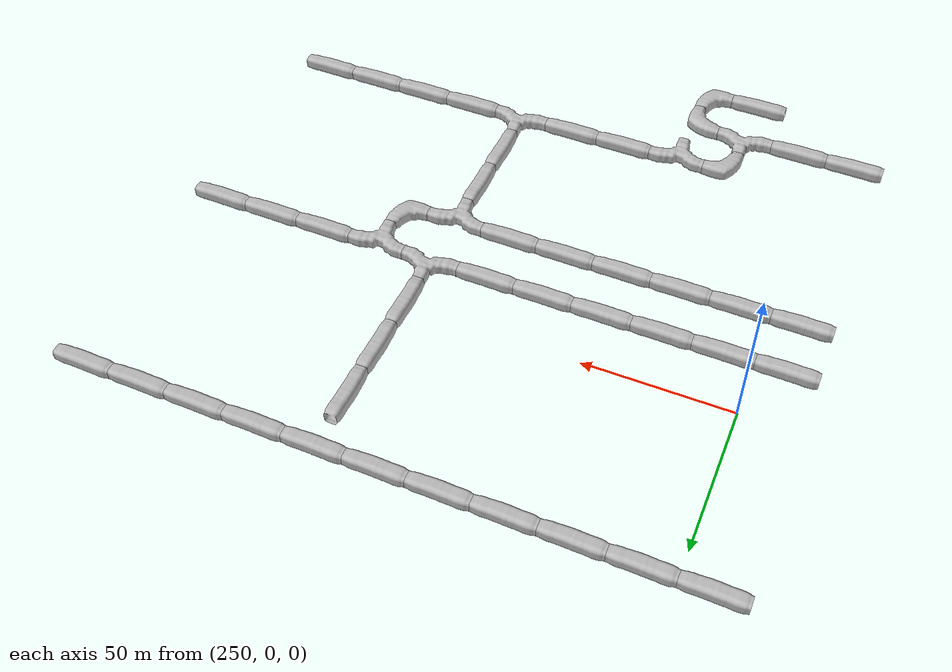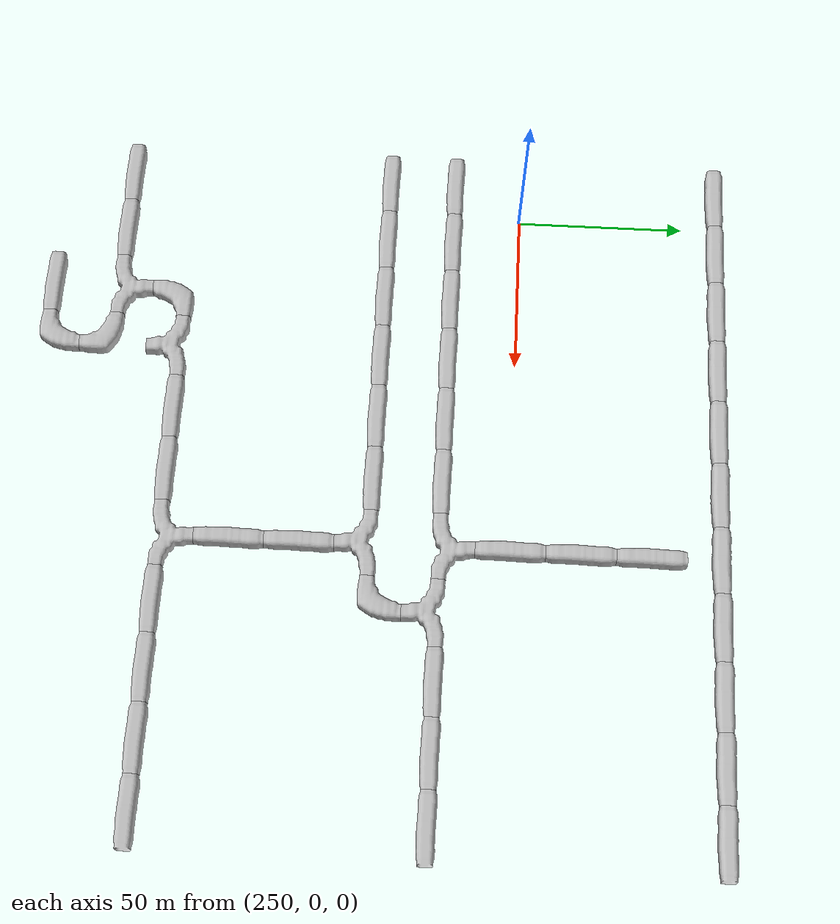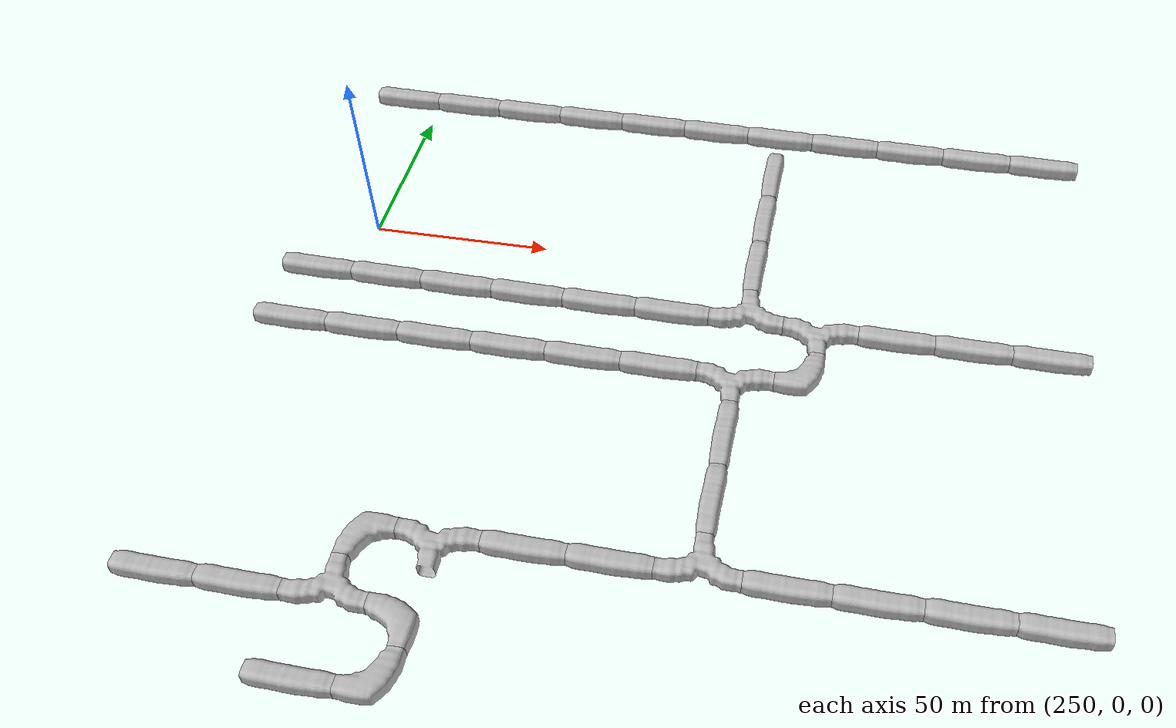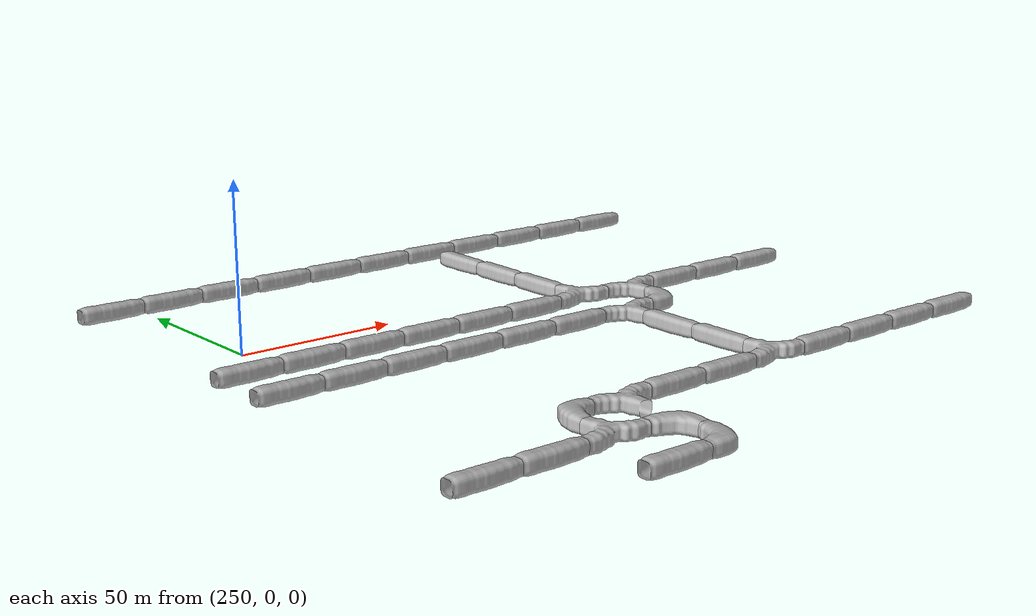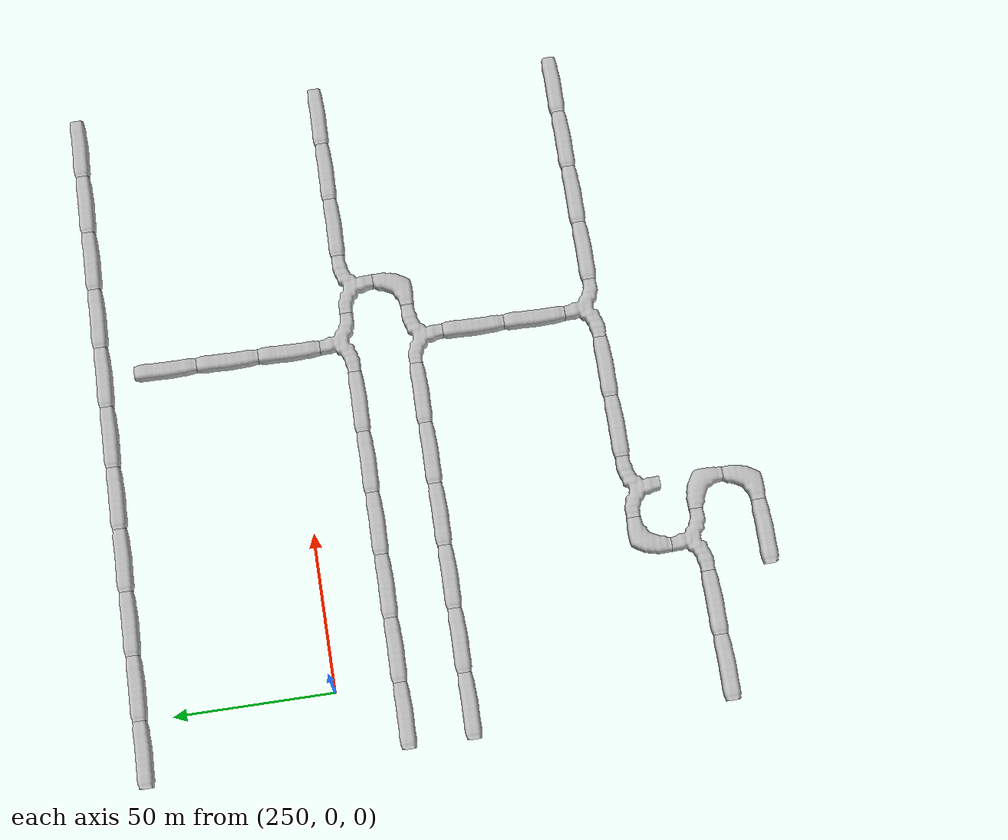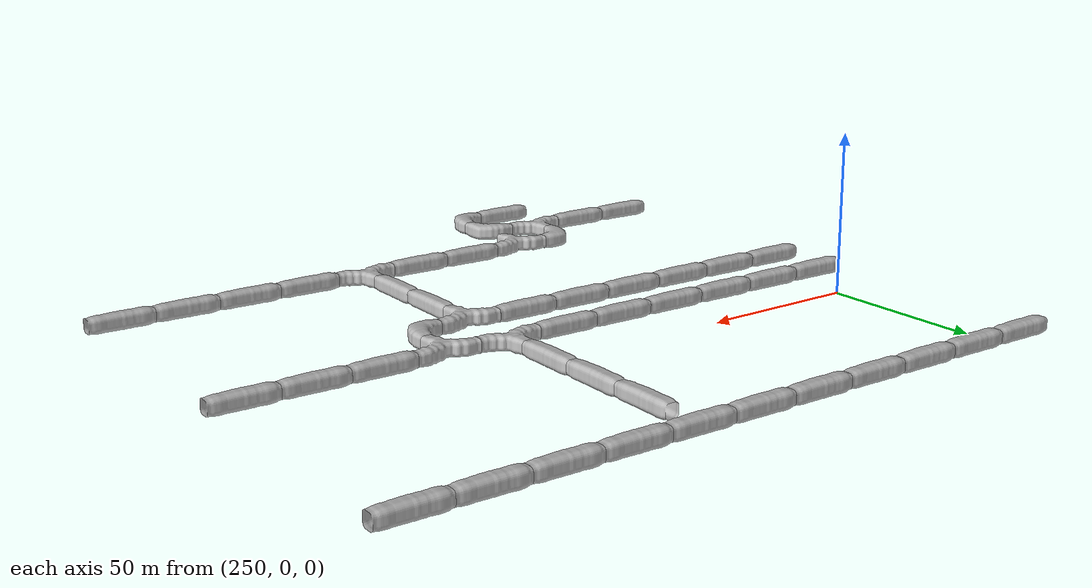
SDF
<sdf version="1.6">
 <world name="cave_8000_16">
  <include>
   <static>true</static>
   <name>cave_12_-6</name>
   <pose>240 -120 0 0 0 1.5707963267948966</pose>
   <uri>model://cave_straight_20m</uri>
  </include>
  <include>
   <static>true</static>
   <name>cave_13_-6</name>
   <pose>260 -120 0 0 0 1.5707963267948966</pose>
   <uri>model://cave_straight_20m</uri>
  </include>
  <include>
   <static>true</static>
   <name>cave_14_-6</name>
   <pose>280 -120 0 0 0 0.0</pose>
   <uri>model://cave_3way_20m</uri>
  </include>
  <include>
   <static>true</static>
   <name>cave_15_-6</name>
   <pose>300 -120 0 0 0 3.141592653589793</pose>
   <uri>model://cave_L_20m</uri>
  </include>
  <include>
   <static>true</static>
   <name>cave_15_-7</name>
   <pose>300 -140 0 0 0 1.5707963267948966</pose>
   <uri>model://cave_L_20m</uri>
  </include>
  <include>
   <static>true</static>
   <name>cave_14_-7</name>
   <pose>280 -140 0 0 0 1.5707963267948966</pose>
   <uri>model://cave_straight_20m</uri>
  </include>
  <include>
   <static>true</static>
   <name>cave_14_-5</name>
   <pose>280 -100 0 0 0 -1.5707963267948966</pose>
   <uri>model://cave_L_20m</uri>
  </include>
  <include>
   <static>true</static>
   <name>cave_15_-5</name>
   <pose>300 -100 0 0 0 3.141592653589793</pose>
   <uri>model://cave_3way_20m</uri>
  </include>
  <include>
   <static>true</static>
   <name>cave_16_-5</name>
   <pose>320 -100 0 0 0 1.5707963267948966</pose>
   <uri>model://cave_straight_20m</uri>
  </include>
  <include>
   <static>true</static>
   <name>cave_17_-5</name>
   <pose>340 -100 0 0 0 1.5707963267948966</pose>
   <uri>model://cave_straight_20m</uri>
  </include>
  <include>
   <static>true</static>
   <name>cave_18_-5</name>
   <pose>360 -100 0 0 0 0.0</pose>
   <uri>model://cave_3way_20m</uri>
  </include>
  <include>
   <static>true</static>
   <name>cave_19_-5</name>
   <pose>380 -100 0 0 0 1.5707963267948966</pose>
   <uri>model://cave_straight_20m</uri>
  </include>
  <include>
   <static>true</static>
   <name>cave_20_-5</name>
   <pose>400 -100 0 0 0 1.5707963267948966</pose>
   <uri>model://cave_straight_20m</uri>
  </include>
  <include>
   <static>true</static>
   <name>cave_21_-5</name>
   <pose>420 -100 0 0 0 1.5707963267948966</pose>
   <uri>model://cave_straight_20m</uri>
  </include>
  <include>
   <static>true</static>
   <name>cave_22_-5</name>
   <pose>440 -100 0 0 0 1.5707963267948966</pose>
   <uri>model://cave_straight_20m</uri>
  </include>
  <include>
   <static>true</static>
   <name>cave_18_-4</name>
   <pose>360 -80 0 0 0 0.0</pose>
   <uri>model://cave_straight_20m</uri>
  </include>
  <include>
   <static>true</static>
   <name>cave_18_-3</name>
   <pose>360 -60 0 0 0 0.0</pose>
   <uri>model://cave_straight_20m</uri>
  </include>
  <include>
   <static>true</static>
   <name>cave_18_-2</name>
   <pose>360 -40 0 0 0 3.141592653589793</pose>
   <uri>model://cave_3way_20m</uri>
  </include>
  <include>
   <static>true</static>
   <name>cave_19_-2</name>
   <pose>380 -40 0 0 0 1.5707963267948966</pose>
   <uri>model://cave_L_20m</uri>
  </include>
  <include>
   <static>true</static>
   <name>cave_19_-1</name>
   <pose>380 -20 0 0 0 3.141592653589793</pose>
   <uri>model://cave_3way_20m</uri>
  </include>
  <include>
   <static>true</static>
   <name>cave_20_-1</name>
   <pose>400 -20 0 0 0 1.5707963267948966</pose>
   <uri>model://cave_straight_20m</uri>
  </include>
  <include>
   <static>true</static>
   <name>cave_21_-1</name>
   <pose>420 -20 0 0 0 1.5707963267948966</pose>
   <uri>model://cave_straight_20m</uri>
  </include>
  <include>
   <static>true</static>
   <name>cave_22_-1</name>
   <pose>440 -20 0 0 0 1.5707963267948966</pose>
   <uri>model://cave_straight_20m</uri>
  </include>
  <include>
   <static>true</static>
   <name>cave_18_-1</name>
   <pose>360 -20 0 0 0 0.0</pose>
   <uri>model://cave_3way_20m</uri>
  </include>
  <include>
   <static>true</static>
   <name>cave_17_-1</name>
   <pose>340 -20 0 0 0 1.5707963267948966</pose>
   <uri>model://cave_straight_20m</uri>
  </include>
  <include>
   <static>true</static>
   <name>cave_16_-1</name>
   <pose>320 -20 0 0 0 1.5707963267948966</pose>
   <uri>model://cave_straight_20m</uri>
  </include>
  <include>
   <static>true</static>
   <name>cave_15_-1</name>
   <pose>300 -20 0 0 0 1.5707963267948966</pose>
   <uri>model://cave_straight_20m</uri>
  </include>
  <include>
   <static>true</static>
   <name>cave_14_-1</name>
   <pose>280 -20 0 0 0 1.5707963267948966</pose>
   <uri>model://cave_straight_20m</uri>
  </include>
  <include>
   <static>true</static>
   <name>cave_13_-1</name>
   <pose>260 -20 0 0 0 1.5707963267948966</pose>
   <uri>model://cave_straight_20m</uri>
  </include>
  <include>
   <static>true</static>
   <name>cave_12_-1</name>
   <pose>240 -20 0 0 0 1.5707963267948966</pose>
   <uri>model://cave_straight_20m</uri>
  </include>
  <include>
   <static>true</static>
   <name>cave_18_0</name>
   <pose>360 0 0 0 0 0.0</pose>
   <uri>model://cave_straight_20m</uri>
  </include>
  <include>
   <static>true</static>
   <name>cave_18_1</name>
   <pose>360 20 0 0 0 0.0</pose>
   <uri>model://cave_straight_20m</uri>
  </include>
  <include>
   <static>true</static>
   <name>cave_18_2</name>
   <pose>360 40 0 0 0 0.0</pose>
   <uri>model://cave_straight_20m</uri>
  </include>
  <include>
   <static>true</static>
   <name>cave_17_-2</name>
   <pose>340 -40 0 0 0 1.5707963267948966</pose>
   <uri>model://cave_straight_20m</uri>
  </include>
  <include>
   <static>true</static>
   <name>cave_16_-2</name>
   <pose>320 -40 0 0 0 1.5707963267948966</pose>
   <uri>model://cave_straight_20m</uri>
  </include>
  <include>
   <static>true</static>
   <name>cave_15_-2</name>
   <pose>300 -40 0 0 0 1.5707963267948966</pose>
   <uri>model://cave_straight_20m</uri>
  </include>
  <include>
   <static>true</static>
   <name>cave_14_-2</name>
   <pose>280 -40 0 0 0 1.5707963267948966</pose>
   <uri>model://cave_straight_20m</uri>
  </include>
  <include>
   <static>true</static>
   <name>cave_13_-2</name>
   <pose>260 -40 0 0 0 1.5707963267948966</pose>
   <uri>model://cave_straight_20m</uri>
  </include>
  <include>
   <static>true</static>
   <name>cave_12_-2</name>
   <pose>240 -40 0 0 0 1.5707963267948966</pose>
   <uri>model://cave_straight_20m</uri>
  </include>
  <include>
   <static>true</static>
   <name>cave_12_3</name>
   <pose>240 60 0 0 0 1.5707963267948966</pose>
   <uri>model://cave_straight_20m</uri>
  </include>
  <include>
   <static>true</static>
   <name>cave_13_3</name>
   <pose>260 60 0 0 0 1.5707963267948966</pose>
   <uri>model://cave_straight_20m</uri>
  </include>
  <include>
   <static>true</static>
   <name>cave_14_3</name>
   <pose>280 60 0 0 0 1.5707963267948966</pose>
   <uri>model://cave_straight_20m</uri>
  </include>
  <include>
   <static>true</static>
   <name>cave_15_3</name>
   <pose>300 60 0 0 0 1.5707963267948966</pose>
   <uri>model://cave_straight_20m</uri>
  </include>
  <include>
   <static>true</static>
   <name>cave_16_3</name>
   <pose>320 60 0 0 0 1.5707963267948966</pose>
   <uri>model://cave_straight_20m</uri>
  </include>
  <include>
   <static>true</static>
   <name>cave_17_3</name>
   <pose>340 60 0 0 0 1.5707963267948966</pose>
   <uri>model://cave_straight_20m</uri>
  </include>
  <include>
   <static>true</static>
   <name>cave_18_3</name>
   <pose>360 60 0 0 0 1.5707963267948966</pose>
   <uri>model://cave_straight_20m</uri>
  </include>
  <include>
   <static>true</static>
   <name>cave_19_3</name>
   <pose>380 60 0 0 0 1.5707963267948966</pose>
   <uri>model://cave_straight_20m</uri>
  </include>
  <include>
   <static>true</static>
   <name>cave_20_3</name>
   <pose>400 60 0 0 0 1.5707963267948966</pose>
   <uri>model://cave_straight_20m</uri>
  </include>
  <include>
   <static>true</static>
   <name>cave_21_3</name>
   <pose>420 60 0 0 0 1.5707963267948966</pose>
   <uri>model://cave_straight_20m</uri>
  </include>
  <include>
   <static>true</static>
   <name>cave_22_3</name>
   <pose>440 60 0 0 0 1.5707963267948966</pose>
   <uri>model://cave_straight_20m</uri>
  </include>
 </world>
</sdf>
